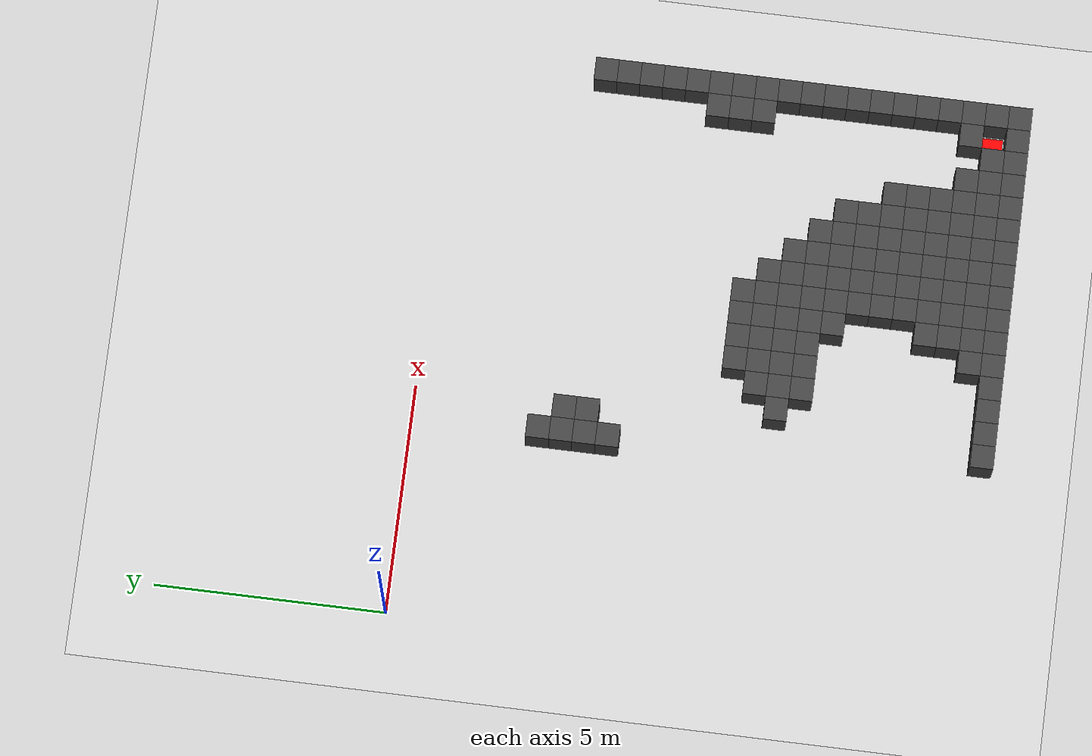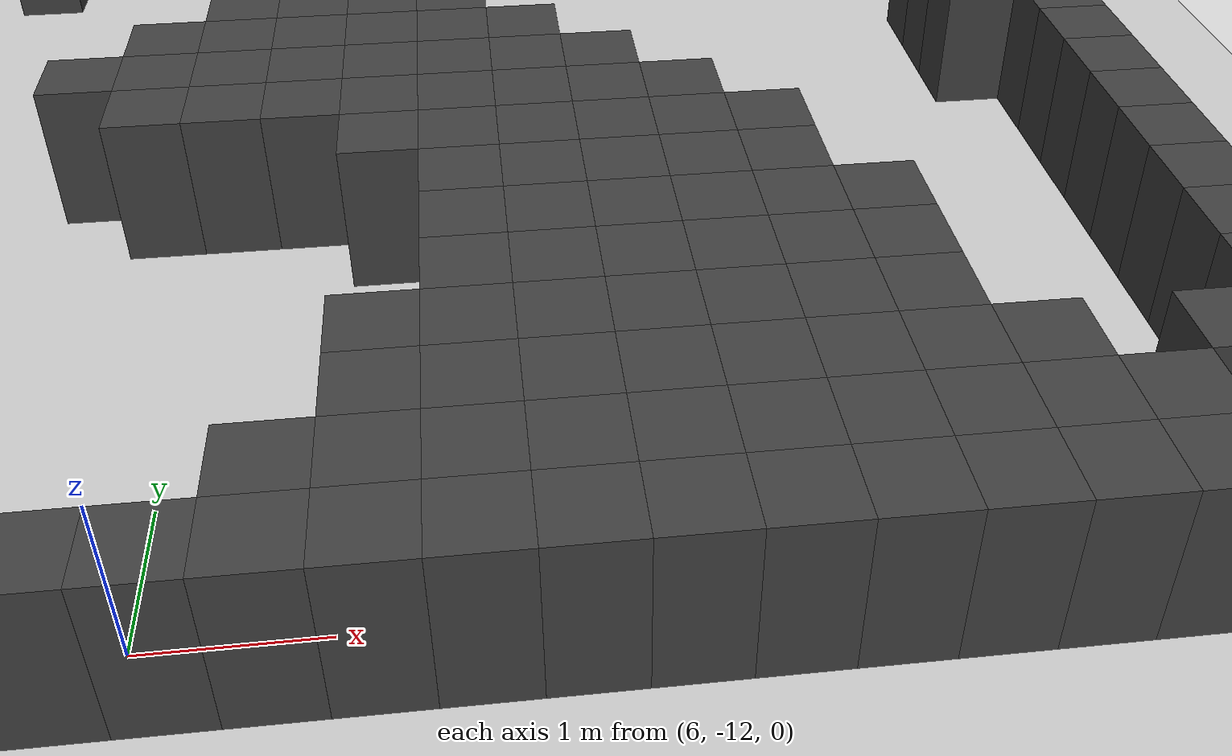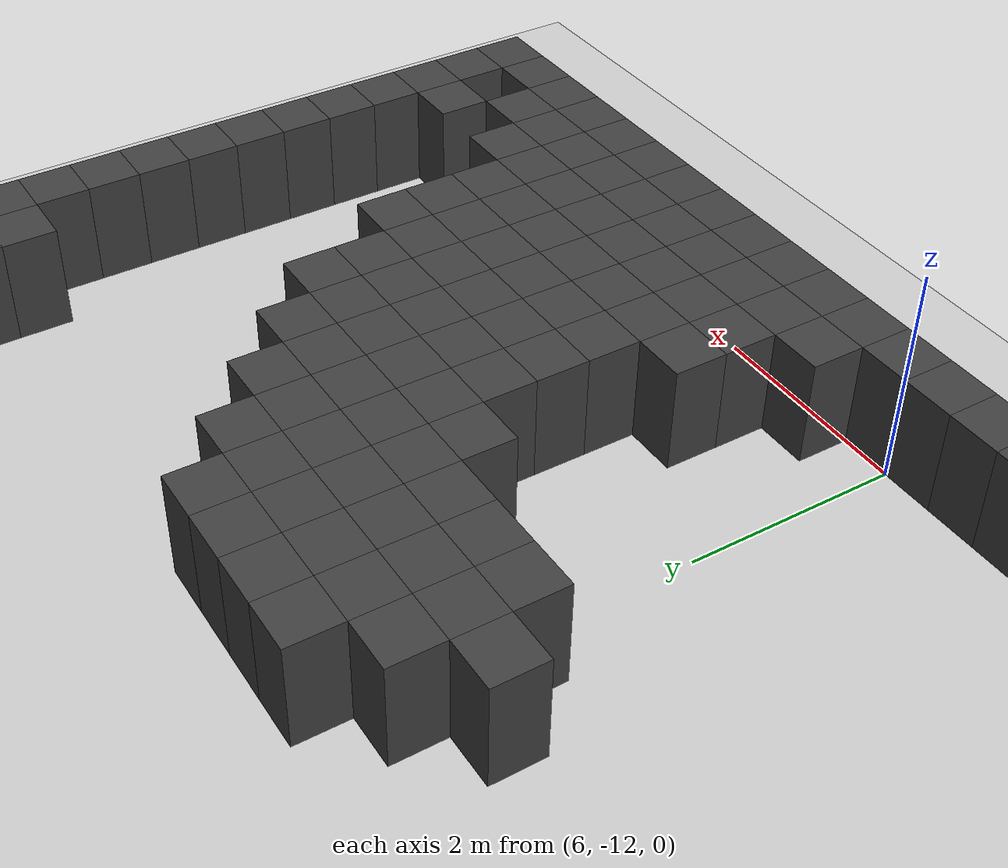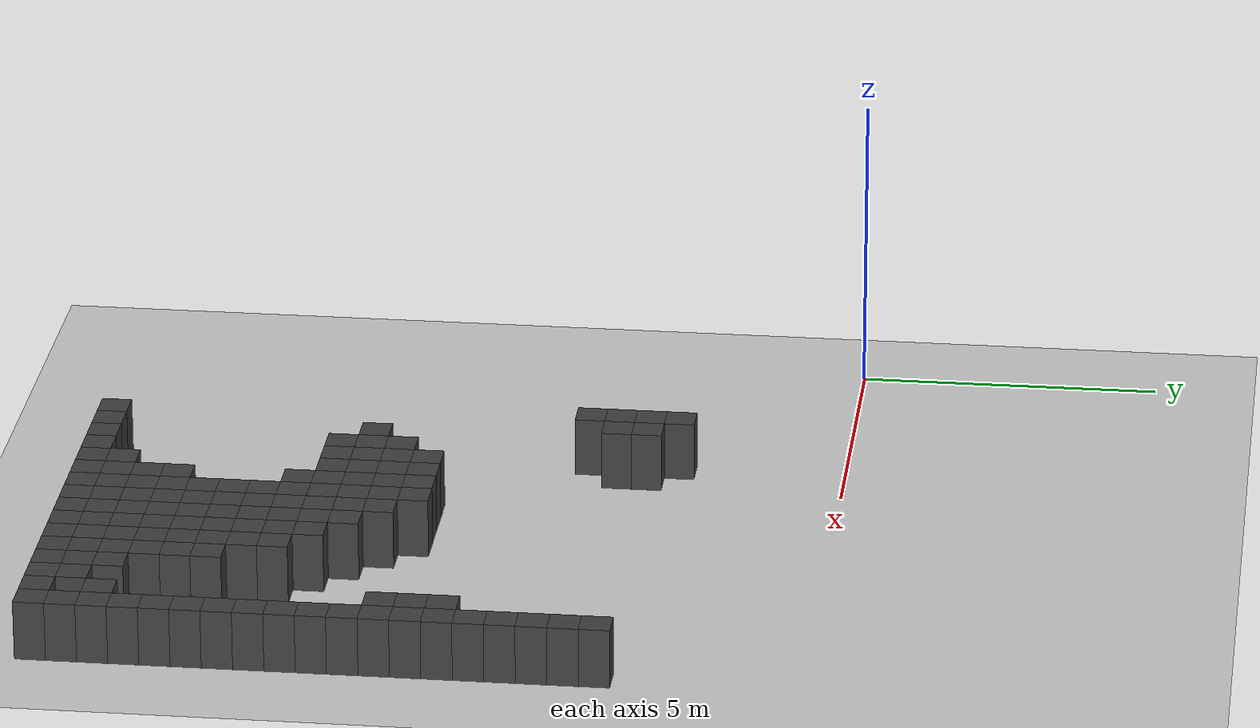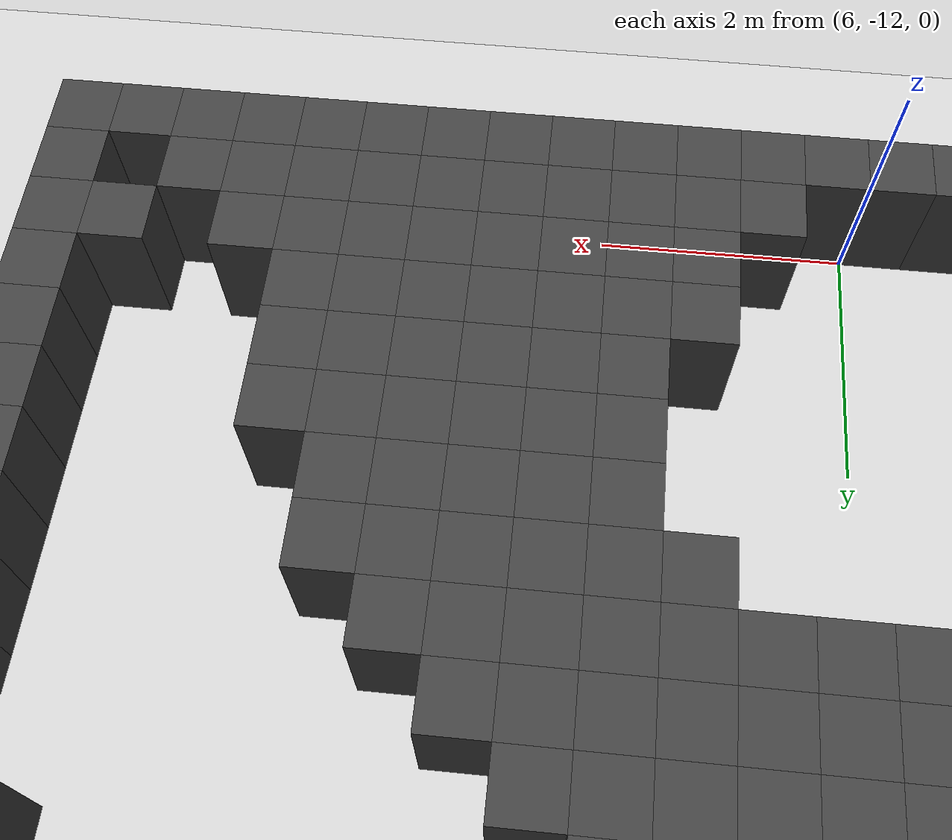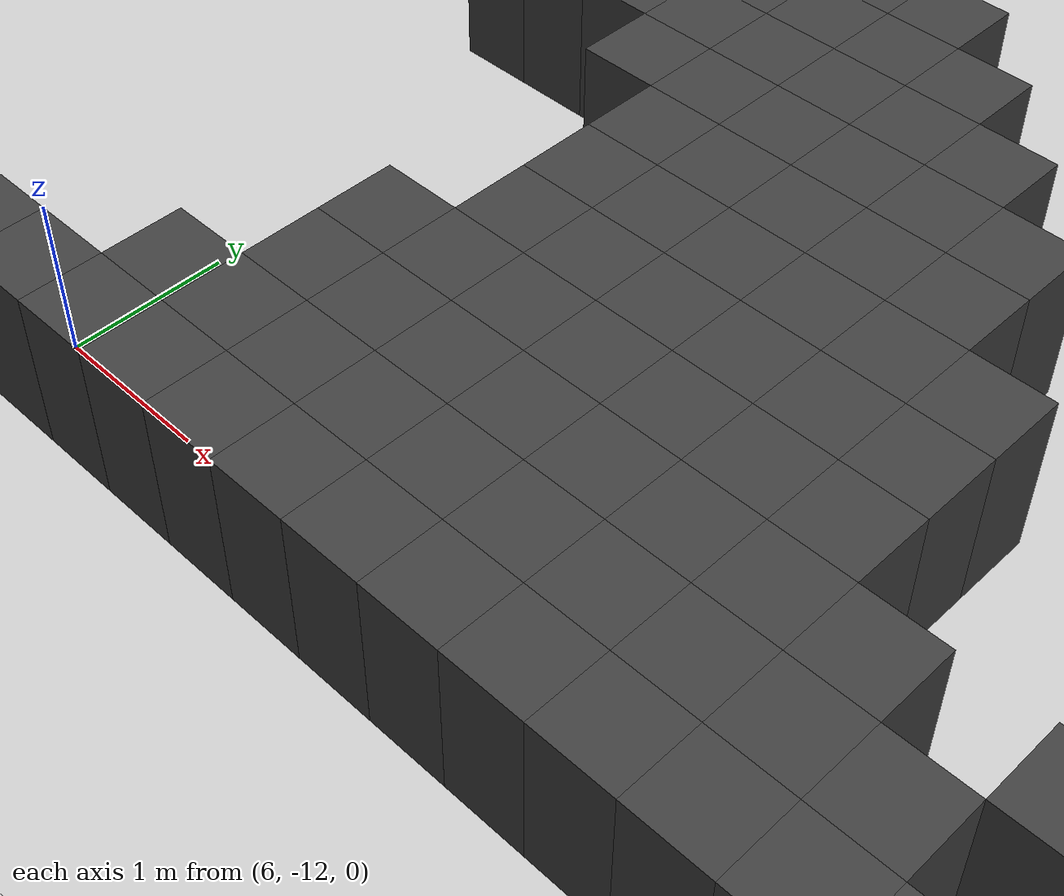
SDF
<sdf version="1.7">
 <world name="map_9705">
  <model name="ground_plane">
   <static>true</static>
   <link name="link">
    <collision name="collision">
     <geometry><plane><normal>0 0 1</normal><size>200 200</size></plane></geometry>
    </collision>
    <visual name="visual">
     <geometry><plane><normal>0 0 1</normal><size>200 200</size></plane></geometry>
     <material><ambient>0.8 0.8 0.8 1</ambient><diffuse>0.8 0.8 0.8 1</diffuse></material>
    </visual>
   </link>
  </model>
  <model name="maze_environment">
   <static>true</static>
   <link name="wall_688">
    <pose>4.250 -2.750 0.500 0 0 0</pose>
    <collision name="col"><geometry><box><size>0.5 0.5 1.0</size></box></geometry></collision>
    <visual name="vis">
     <geometry><box><size>0.5 0.5 1.0</size></box></geometry>
     <material><ambient>0.15 0.15 0.15 1</ambient><diffuse>0.25 0.25 0.25 1</diffuse></material>
    </visual>
   </link>
   <link name="wall_706">
    <pose>4.250 -3.250 0.500 0 0 0</pose>
    <collision name="col"><geometry><box><size>0.5 0.5 1.0</size></box></geometry></collision>
    <visual name="vis">
     <geometry><box><size>0.5 0.5 1.0</size></box></geometry>
     <material><ambient>0.15 0.15 0.15 1</ambient><diffuse>0.25 0.25 0.25 1</diffuse></material>
    </visual>
   </link>
   <link name="wall_707">
    <pose>4.750 -3.250 0.500 0 0 0</pose>
    <collision name="col"><geometry><box><size>0.5 0.5 1.0</size></box></geometry></collision>
    <visual name="vis">
     <geometry><box><size>0.5 0.5 1.0</size></box></geometry>
     <material><ambient>0.15 0.15 0.15 1</ambient><diffuse>0.25 0.25 0.25 1</diffuse></material>
    </visual>
   </link>
   <link name="wall_708">
    <pose>12.250 -3.250 0.500 0 0 0</pose>
    <collision name="col"><geometry><box><size>0.5 0.5 1.0</size></box></geometry></collision>
    <visual name="vis">
     <geometry><box><size>0.5 0.5 1.0</size></box></geometry>
     <material><ambient>0.15 0.15 0.15 1</ambient><diffuse>0.25 0.25 0.25 1</diffuse></material>
    </visual>
   </link>
   <link name="wall_717">
    <pose>4.250 -3.750 0.500 0 0 0</pose>
    <collision name="col"><geometry><box><size>0.5 0.5 1.0</size></box></geometry></collision>
    <visual name="vis">
     <geometry><box><size>0.5 0.5 1.0</size></box></geometry>
     <material><ambient>0.15 0.15 0.15 1</ambient><diffuse>0.25 0.25 0.25 1</diffuse></material>
    </visual>
   </link>
   <link name="wall_718">
    <pose>4.750 -3.750 0.500 0 0 0</pose>
    <collision name="col"><geometry><box><size>0.5 0.5 1.0</size></box></geometry></collision>
    <visual name="vis">
     <geometry><box><size>0.5 0.5 1.0</size></box></geometry>
     <material><ambient>0.15 0.15 0.15 1</ambient><diffuse>0.25 0.25 0.25 1</diffuse></material>
    </visual>
   </link>
   <link name="wall_719">
    <pose>12.250 -3.750 0.500 0 0 0</pose>
    <collision name="col"><geometry><box><size>0.5 0.5 1.0</size></box></geometry></collision>
    <visual name="vis">
     <geometry><box><size>0.5 0.5 1.0</size></box></geometry>
     <material><ambient>0.15 0.15 0.15 1</ambient><diffuse>0.25 0.25 0.25 1</diffuse></material>
    </visual>
   </link>
   <link name="wall_726">
    <pose>4.250 -4.250 0.500 0 0 0</pose>
    <collision name="col"><geometry><box><size>0.5 0.5 1.0</size></box></geometry></collision>
    <visual name="vis">
     <geometry><box><size>0.5 0.5 1.0</size></box></geometry>
     <material><ambient>0.15 0.15 0.15 1</ambient><diffuse>0.25 0.25 0.25 1</diffuse></material>
    </visual>
   </link>
   <link name="wall_727">
    <pose>12.250 -4.250 0.500 0 0 0</pose>
    <collision name="col"><geometry><box><size>0.5 0.5 1.0</size></box></geometry></collision>
    <visual name="vis">
     <geometry><box><size>0.5 0.5 1.0</size></box></geometry>
     <material><ambient>0.15 0.15 0.15 1</ambient><diffuse>0.25 0.25 0.25 1</diffuse></material>
    </visual>
   </link>
   <link name="wall_734">
    <pose>12.250 -4.750 0.500 0 0 0</pose>
    <collision name="col"><geometry><box><size>0.5 0.5 1.0</size></box></geometry></collision>
    <visual name="vis">
     <geometry><box><size>0.5 0.5 1.0</size></box></geometry>
     <material><ambient>0.15 0.15 0.15 1</ambient><diffuse>0.25 0.25 0.25 1</diffuse></material>
    </visual>
   </link>
   <link name="wall_746">
    <pose>12.250 -5.250 0.500 0 0 0</pose>
    <collision name="col"><geometry><box><size>0.5 0.5 1.0</size></box></geometry></collision>
    <visual name="vis">
     <geometry><box><size>0.5 0.5 1.0</size></box></geometry>
     <material><ambient>0.15 0.15 0.15 1</ambient><diffuse>0.25 0.25 0.25 1</diffuse></material>
    </visual>
   </link>
   <link name="wall_763">
    <pose>11.750 -5.750 0.500 0 0 0</pose>
    <collision name="col"><geometry><box><size>0.5 0.5 1.0</size></box></geometry></collision>
    <visual name="vis">
     <geometry><box><size>0.5 0.5 1.0</size></box></geometry>
     <material><ambient>0.15 0.15 0.15 1</ambient><diffuse>0.25 0.25 0.25 1</diffuse></material>
    </visual>
   </link>
   <link name="wall_764">
    <pose>12.250 -5.750 0.500 0 0 0</pose>
    <collision name="col"><geometry><box><size>0.5 0.5 1.0</size></box></geometry></collision>
    <visual name="vis">
     <geometry><box><size>0.5 0.5 1.0</size></box></geometry>
     <material><ambient>0.15 0.15 0.15 1</ambient><diffuse>0.25 0.25 0.25 1</diffuse></material>
    </visual>
   </link>
   <link name="wall_782">
    <pose>11.750 -6.250 0.500 0 0 0</pose>
    <collision name="col"><geometry><box><size>0.5 0.5 1.0</size></box></geometry></collision>
    <visual name="vis">
     <geometry><box><size>0.5 0.5 1.0</size></box></geometry>
     <material><ambient>0.15 0.15 0.15 1</ambient><diffuse>0.25 0.25 0.25 1</diffuse></material>
    </visual>
   </link>
   <link name="wall_783">
    <pose>12.250 -6.250 0.500 0 0 0</pose>
    <collision name="col"><geometry><box><size>0.5 0.5 1.0</size></box></geometry></collision>
    <visual name="vis">
     <geometry><box><size>0.5 0.5 1.0</size></box></geometry>
     <material><ambient>0.15 0.15 0.15 1</ambient><diffuse>0.25 0.25 0.25 1</diffuse></material>
    </visual>
   </link>
   <link name="wall_802">
    <pose>6.250 -6.750 0.500 0 0 0</pose>
    <collision name="col"><geometry><box><size>0.5 0.5 1.0</size></box></geometry></collision>
    <visual name="vis">
     <geometry><box><size>0.5 0.5 1.0</size></box></geometry>
     <material><ambient>0.15 0.15 0.15 1</ambient><diffuse>0.25 0.25 0.25 1</diffuse></material>
    </visual>
   </link>
   <link name="wall_803">
    <pose>6.750 -6.750 0.500 0 0 0</pose>
    <collision name="col"><geometry><box><size>0.5 0.5 1.0</size></box></geometry></collision>
    <visual name="vis">
     <geometry><box><size>0.5 0.5 1.0</size></box></geometry>
     <material><ambient>0.15 0.15 0.15 1</ambient><diffuse>0.25 0.25 0.25 1</diffuse></material>
    </visual>
   </link>
   <link name="wall_804">
    <pose>7.250 -6.750 0.500 0 0 0</pose>
    <collision name="col"><geometry><box><size>0.5 0.5 1.0</size></box></geometry></collision>
    <visual name="vis">
     <geometry><box><size>0.5 0.5 1.0</size></box></geometry>
     <material><ambient>0.15 0.15 0.15 1</ambient><diffuse>0.25 0.25 0.25 1</diffuse></material>
    </visual>
   </link>
   <link name="wall_805">
    <pose>7.750 -6.750 0.500 0 0 0</pose>
    <collision name="col"><geometry><box><size>0.5 0.5 1.0</size></box></geometry></collision>
    <visual name="vis">
     <geometry><box><size>0.5 0.5 1.0</size></box></geometry>
     <material><ambient>0.15 0.15 0.15 1</ambient><diffuse>0.25 0.25 0.25 1</diffuse></material>
    </visual>
   </link>
   <link name="wall_806">
    <pose>11.750 -6.750 0.500 0 0 0</pose>
    <collision name="col"><geometry><box><size>0.5 0.5 1.0</size></box></geometry></collision>
    <visual name="vis">
     <geometry><box><size>0.5 0.5 1.0</size></box></geometry>
     <material><ambient>0.15 0.15 0.15 1</ambient><diffuse>0.25 0.25 0.25 1</diffuse></material>
    </visual>
   </link>
   <link name="wall_807">
    <pose>12.250 -6.750 0.500 0 0 0</pose>
    <collision name="col"><geometry><box><size>0.5 0.5 1.0</size></box></geometry></collision>
    <visual name="vis">
     <geometry><box><size>0.5 0.5 1.0</size></box></geometry>
     <material><ambient>0.15 0.15 0.15 1</ambient><diffuse>0.25 0.25 0.25 1</diffuse></material>
    </visual>
   </link>
   <link name="wall_828">
    <pose>5.750 -7.250 0.500 0 0 0</pose>
    <collision name="col"><geometry><box><size>0.5 0.5 1.0</size></box></geometry></collision>
    <visual name="vis">
     <geometry><box><size>0.5 0.5 1.0</size></box></geometry>
     <material><ambient>0.15 0.15 0.15 1</ambient><diffuse>0.25 0.25 0.25 1</diffuse></material>
    </visual>
   </link>
   <link name="wall_829">
    <pose>6.250 -7.250 0.500 0 0 0</pose>
    <collision name="col"><geometry><box><size>0.5 0.5 1.0</size></box></geometry></collision>
    <visual name="vis">
     <geometry><box><size>0.5 0.5 1.0</size></box></geometry>
     <material><ambient>0.15 0.15 0.15 1</ambient><diffuse>0.25 0.25 0.25 1</diffuse></material>
    </visual>
   </link>
   <link name="wall_830">
    <pose>6.750 -7.250 0.500 0 0 0</pose>
    <collision name="col"><geometry><box><size>0.5 0.5 1.0</size></box></geometry></collision>
    <visual name="vis">
     <geometry><box><size>0.5 0.5 1.0</size></box></geometry>
     <material><ambient>0.15 0.15 0.15 1</ambient><diffuse>0.25 0.25 0.25 1</diffuse></material>
    </visual>
   </link>
   <link name="wall_831">
    <pose>7.250 -7.250 0.500 0 0 0</pose>
    <collision name="col"><geometry><box><size>0.5 0.5 1.0</size></box></geometry></collision>
    <visual name="vis">
     <geometry><box><size>0.5 0.5 1.0</size></box></geometry>
     <material><ambient>0.15 0.15 0.15 1</ambient><diffuse>0.25 0.25 0.25 1</diffuse></material>
    </visual>
   </link>
   <link name="wall_832">
    <pose>7.750 -7.250 0.500 0 0 0</pose>
    <collision name="col"><geometry><box><size>0.5 0.5 1.0</size></box></geometry></collision>
    <visual name="vis">
     <geometry><box><size>0.5 0.5 1.0</size></box></geometry>
     <material><ambient>0.15 0.15 0.15 1</ambient><diffuse>0.25 0.25 0.25 1</diffuse></material>
    </visual>
   </link>
   <link name="wall_833">
    <pose>8.250 -7.250 0.500 0 0 0</pose>
    <collision name="col"><geometry><box><size>0.5 0.5 1.0</size></box></geometry></collision>
    <visual name="vis">
     <geometry><box><size>0.5 0.5 1.0</size></box></geometry>
     <material><ambient>0.15 0.15 0.15 1</ambient><diffuse>0.25 0.25 0.25 1</diffuse></material>
    </visual>
   </link>
   <link name="wall_834">
    <pose>12.250 -7.250 0.500 0 0 0</pose>
    <collision name="col"><geometry><box><size>0.5 0.5 1.0</size></box></geometry></collision>
    <visual name="vis">
     <geometry><box><size>0.5 0.5 1.0</size></box></geometry>
     <material><ambient>0.15 0.15 0.15 1</ambient><diffuse>0.25 0.25 0.25 1</diffuse></material>
    </visual>
   </link>
   <link name="wall_852">
    <pose>5.250 -7.750 0.500 0 0 0</pose>
    <collision name="col"><geometry><box><size>0.5 0.5 1.0</size></box></geometry></collision>
    <visual name="vis">
     <geometry><box><size>0.5 0.5 1.0</size></box></geometry>
     <material><ambient>0.15 0.15 0.15 1</ambient><diffuse>0.25 0.25 0.25 1</diffuse></material>
    </visual>
   </link>
   <link name="wall_853">
    <pose>5.750 -7.750 0.500 0 0 0</pose>
    <collision name="col"><geometry><box><size>0.5 0.5 1.0</size></box></geometry></collision>
    <visual name="vis">
     <geometry><box><size>0.5 0.5 1.0</size></box></geometry>
     <material><ambient>0.15 0.15 0.15 1</ambient><diffuse>0.25 0.25 0.25 1</diffuse></material>
    </visual>
   </link>
   <link name="wall_854">
    <pose>6.250 -7.750 0.500 0 0 0</pose>
    <collision name="col"><geometry><box><size>0.5 0.5 1.0</size></box></geometry></collision>
    <visual name="vis">
     <geometry><box><size>0.5 0.5 1.0</size></box></geometry>
     <material><ambient>0.15 0.15 0.15 1</ambient><diffuse>0.25 0.25 0.25 1</diffuse></material>
    </visual>
   </link>
   <link name="wall_855">
    <pose>6.750 -7.750 0.500 0 0 0</pose>
    <collision name="col"><geometry><box><size>0.5 0.5 1.0</size></box></geometry></collision>
    <visual name="vis">
     <geometry><box><size>0.5 0.5 1.0</size></box></geometry>
     <material><ambient>0.15 0.15 0.15 1</ambient><diffuse>0.25 0.25 0.25 1</diffuse></material>
    </visual>
   </link>
   <link name="wall_856">
    <pose>7.250 -7.750 0.500 0 0 0</pose>
    <collision name="col"><geometry><box><size>0.5 0.5 1.0</size></box></geometry></collision>
    <visual name="vis">
     <geometry><box><size>0.5 0.5 1.0</size></box></geometry>
     <material><ambient>0.15 0.15 0.15 1</ambient><diffuse>0.25 0.25 0.25 1</diffuse></material>
    </visual>
   </link>
   <link name="wall_857">
    <pose>7.750 -7.750 0.500 0 0 0</pose>
    <collision name="col"><geometry><box><size>0.5 0.5 1.0</size></box></geometry></collision>
    <visual name="vis">
     <geometry><box><size>0.5 0.5 1.0</size></box></geometry>
     <material><ambient>0.15 0.15 0.15 1</ambient><diffuse>0.25 0.25 0.25 1</diffuse></material>
    </visual>
   </link>
   <link name="wall_858">
    <pose>8.250 -7.750 0.500 0 0 0</pose>
    <collision name="col"><geometry><box><size>0.5 0.5 1.0</size></box></geometry></collision>
    <visual name="vis">
     <geometry><box><size>0.5 0.5 1.0</size></box></geometry>
     <material><ambient>0.15 0.15 0.15 1</ambient><diffuse>0.25 0.25 0.25 1</diffuse></material>
    </visual>
   </link>
   <link name="wall_859">
    <pose>8.750 -7.750 0.500 0 0 0</pose>
    <collision name="col"><geometry><box><size>0.5 0.5 1.0</size></box></geometry></collision>
    <visual name="vis">
     <geometry><box><size>0.5 0.5 1.0</size></box></geometry>
     <material><ambient>0.15 0.15 0.15 1</ambient><diffuse>0.25 0.25 0.25 1</diffuse></material>
    </visual>
   </link>
   <link name="wall_860">
    <pose>12.250 -7.750 0.500 0 0 0</pose>
    <collision name="col"><geometry><box><size>0.5 0.5 1.0</size></box></geometry></collision>
    <visual name="vis">
     <geometry><box><size>0.5 0.5 1.0</size></box></geometry>
     <material><ambient>0.15 0.15 0.15 1</ambient><diffuse>0.25 0.25 0.25 1</diffuse></material>
    </visual>
   </link>
   <link name="wall_867">
    <pose>5.750 -8.250 0.500 0 0 0</pose>
    <collision name="col"><geometry><box><size>0.5 0.5 1.0</size></box></geometry></collision>
    <visual name="vis">
     <geometry><box><size>0.5 0.5 1.0</size></box></geometry>
     <material><ambient>0.15 0.15 0.15 1</ambient><diffuse>0.25 0.25 0.25 1</diffuse></material>
    </visual>
   </link>
   <link name="wall_868">
    <pose>6.250 -8.250 0.500 0 0 0</pose>
    <collision name="col"><geometry><box><size>0.5 0.5 1.0</size></box></geometry></collision>
    <visual name="vis">
     <geometry><box><size>0.5 0.5 1.0</size></box></geometry>
     <material><ambient>0.15 0.15 0.15 1</ambient><diffuse>0.25 0.25 0.25 1</diffuse></material>
    </visual>
   </link>
   <link name="wall_869">
    <pose>6.750 -8.250 0.500 0 0 0</pose>
    <collision name="col"><geometry><box><size>0.5 0.5 1.0</size></box></geometry></collision>
    <visual name="vis">
     <geometry><box><size>0.5 0.5 1.0</size></box></geometry>
     <material><ambient>0.15 0.15 0.15 1</ambient><diffuse>0.25 0.25 0.25 1</diffuse></material>
    </visual>
   </link>
   <link name="wall_870">
    <pose>7.250 -8.250 0.500 0 0 0</pose>
    <collision name="col"><geometry><box><size>0.5 0.5 1.0</size></box></geometry></collision>
    <visual name="vis">
     <geometry><box><size>0.5 0.5 1.0</size></box></geometry>
     <material><ambient>0.15 0.15 0.15 1</ambient><diffuse>0.25 0.25 0.25 1</diffuse></material>
    </visual>
   </link>
   <link name="wall_871">
    <pose>7.750 -8.250 0.500 0 0 0</pose>
    <collision name="col"><geometry><box><size>0.5 0.5 1.0</size></box></geometry></collision>
    <visual name="vis">
     <geometry><box><size>0.5 0.5 1.0</size></box></geometry>
     <material><ambient>0.15 0.15 0.15 1</ambient><diffuse>0.25 0.25 0.25 1</diffuse></material>
    </visual>
   </link>
   <link name="wall_872">
    <pose>8.250 -8.250 0.500 0 0 0</pose>
    <collision name="col"><geometry><box><size>0.5 0.5 1.0</size></box></geometry></collision>
    <visual name="vis">
     <geometry><box><size>0.5 0.5 1.0</size></box></geometry>
     <material><ambient>0.15 0.15 0.15 1</ambient><diffuse>0.25 0.25 0.25 1</diffuse></material>
    </visual>
   </link>
   <link name="wall_873">
    <pose>8.750 -8.250 0.500 0 0 0</pose>
    <collision name="col"><geometry><box><size>0.5 0.5 1.0</size></box></geometry></collision>
    <visual name="vis">
     <geometry><box><size>0.5 0.5 1.0</size></box></geometry>
     <material><ambient>0.15 0.15 0.15 1</ambient><diffuse>0.25 0.25 0.25 1</diffuse></material>
    </visual>
   </link>
   <link name="wall_874">
    <pose>9.250 -8.250 0.500 0 0 0</pose>
    <collision name="col"><geometry><box><size>0.5 0.5 1.0</size></box></geometry></collision>
    <visual name="vis">
     <geometry><box><size>0.5 0.5 1.0</size></box></geometry>
     <material><ambient>0.15 0.15 0.15 1</ambient><diffuse>0.25 0.25 0.25 1</diffuse></material>
    </visual>
   </link>
   <link name="wall_875">
    <pose>12.250 -8.250 0.500 0 0 0</pose>
    <collision name="col"><geometry><box><size>0.5 0.5 1.0</size></box></geometry></collision>
    <visual name="vis">
     <geometry><box><size>0.5 0.5 1.0</size></box></geometry>
     <material><ambient>0.15 0.15 0.15 1</ambient><diffuse>0.25 0.25 0.25 1</diffuse></material>
    </visual>
   </link>
   <link name="wall_880">
    <pose>7.250 -8.750 0.500 0 0 0</pose>
    <collision name="col"><geometry><box><size>0.5 0.5 1.0</size></box></geometry></collision>
    <visual name="vis">
     <geometry><box><size>0.5 0.5 1.0</size></box></geometry>
     <material><ambient>0.15 0.15 0.15 1</ambient><diffuse>0.25 0.25 0.25 1</diffuse></material>
    </visual>
   </link>
   <link name="wall_881">
    <pose>7.750 -8.750 0.500 0 0 0</pose>
    <collision name="col"><geometry><box><size>0.5 0.5 1.0</size></box></geometry></collision>
    <visual name="vis">
     <geometry><box><size>0.5 0.5 1.0</size></box></geometry>
     <material><ambient>0.15 0.15 0.15 1</ambient><diffuse>0.25 0.25 0.25 1</diffuse></material>
    </visual>
   </link>
   <link name="wall_882">
    <pose>8.250 -8.750 0.500 0 0 0</pose>
    <collision name="col"><geometry><box><size>0.5 0.5 1.0</size></box></geometry></collision>
    <visual name="vis">
     <geometry><box><size>0.5 0.5 1.0</size></box></geometry>
     <material><ambient>0.15 0.15 0.15 1</ambient><diffuse>0.25 0.25 0.25 1</diffuse></material>
    </visual>
   </link>
   <link name="wall_883">
    <pose>8.750 -8.750 0.500 0 0 0</pose>
    <collision name="col"><geometry><box><size>0.5 0.5 1.0</size></box></geometry></collision>
    <visual name="vis">
     <geometry><box><size>0.5 0.5 1.0</size></box></geometry>
     <material><ambient>0.15 0.15 0.15 1</ambient><diffuse>0.25 0.25 0.25 1</diffuse></material>
    </visual>
   </link>
   <link name="wall_884">
    <pose>9.250 -8.750 0.500 0 0 0</pose>
    <collision name="col"><geometry><box><size>0.5 0.5 1.0</size></box></geometry></collision>
    <visual name="vis">
     <geometry><box><size>0.5 0.5 1.0</size></box></geometry>
     <material><ambient>0.15 0.15 0.15 1</ambient><diffuse>0.25 0.25 0.25 1</diffuse></material>
    </visual>
   </link>
   <link name="wall_885">
    <pose>9.750 -8.750 0.500 0 0 0</pose>
    <collision name="col"><geometry><box><size>0.5 0.5 1.0</size></box></geometry></collision>
    <visual name="vis">
     <geometry><box><size>0.5 0.5 1.0</size></box></geometry>
     <material><ambient>0.15 0.15 0.15 1</ambient><diffuse>0.25 0.25 0.25 1</diffuse></material>
    </visual>
   </link>
   <link name="wall_886">
    <pose>12.250 -8.750 0.500 0 0 0</pose>
    <collision name="col"><geometry><box><size>0.5 0.5 1.0</size></box></geometry></collision>
    <visual name="vis">
     <geometry><box><size>0.5 0.5 1.0</size></box></geometry>
     <material><ambient>0.15 0.15 0.15 1</ambient><diffuse>0.25 0.25 0.25 1</diffuse></material>
    </visual>
   </link>
   <link name="wall_892">
    <pose>7.750 -9.250 0.500 0 0 0</pose>
    <collision name="col"><geometry><box><size>0.5 0.5 1.0</size></box></geometry></collision>
    <visual name="vis">
     <geometry><box><size>0.5 0.5 1.0</size></box></geometry>
     <material><ambient>0.15 0.15 0.15 1</ambient><diffuse>0.25 0.25 0.25 1</diffuse></material>
    </visual>
   </link>
   <link name="wall_893">
    <pose>8.250 -9.250 0.500 0 0 0</pose>
    <collision name="col"><geometry><box><size>0.5 0.5 1.0</size></box></geometry></collision>
    <visual name="vis">
     <geometry><box><size>0.5 0.5 1.0</size></box></geometry>
     <material><ambient>0.15 0.15 0.15 1</ambient><diffuse>0.25 0.25 0.25 1</diffuse></material>
    </visual>
   </link>
   <link name="wall_894">
    <pose>8.750 -9.250 0.500 0 0 0</pose>
    <collision name="col"><geometry><box><size>0.5 0.5 1.0</size></box></geometry></collision>
    <visual name="vis">
     <geometry><box><size>0.5 0.5 1.0</size></box></geometry>
     <material><ambient>0.15 0.15 0.15 1</ambient><diffuse>0.25 0.25 0.25 1</diffuse></material>
    </visual>
   </link>
   <link name="wall_895">
    <pose>9.250 -9.250 0.500 0 0 0</pose>
    <collision name="col"><geometry><box><size>0.5 0.5 1.0</size></box></geometry></collision>
    <visual name="vis">
     <geometry><box><size>0.5 0.5 1.0</size></box></geometry>
     <material><ambient>0.15 0.15 0.15 1</ambient><diffuse>0.25 0.25 0.25 1</diffuse></material>
    </visual>
   </link>
   <link name="wall_896">
    <pose>9.750 -9.250 0.500 0 0 0</pose>
    <collision name="col"><geometry><box><size>0.5 0.5 1.0</size></box></geometry></collision>
    <visual name="vis">
     <geometry><box><size>0.5 0.5 1.0</size></box></geometry>
     <material><ambient>0.15 0.15 0.15 1</ambient><diffuse>0.25 0.25 0.25 1</diffuse></material>
    </visual>
   </link>
   <link name="wall_897">
    <pose>12.250 -9.250 0.500 0 0 0</pose>
    <collision name="col"><geometry><box><size>0.5 0.5 1.0</size></box></geometry></collision>
    <visual name="vis">
     <geometry><box><size>0.5 0.5 1.0</size></box></geometry>
     <material><ambient>0.15 0.15 0.15 1</ambient><diffuse>0.25 0.25 0.25 1</diffuse></material>
    </visual>
   </link>
   <link name="wall_906">
    <pose>7.750 -9.750 0.500 0 0 0</pose>
    <collision name="col"><geometry><box><size>0.5 0.5 1.0</size></box></geometry></collision>
    <visual name="vis">
     <geometry><box><size>0.5 0.5 1.0</size></box></geometry>
     <material><ambient>0.15 0.15 0.15 1</ambient><diffuse>0.25 0.25 0.25 1</diffuse></material>
    </visual>
   </link>
   <link name="wall_907">
    <pose>8.250 -9.750 0.500 0 0 0</pose>
    <collision name="col"><geometry><box><size>0.5 0.5 1.0</size></box></geometry></collision>
    <visual name="vis">
     <geometry><box><size>0.5 0.5 1.0</size></box></geometry>
     <material><ambient>0.15 0.15 0.15 1</ambient><diffuse>0.25 0.25 0.25 1</diffuse></material>
    </visual>
   </link>
   <link name="wall_908">
    <pose>8.750 -9.750 0.500 0 0 0</pose>
    <collision name="col"><geometry><box><size>0.5 0.5 1.0</size></box></geometry></collision>
    <visual name="vis">
     <geometry><box><size>0.5 0.5 1.0</size></box></geometry>
     <material><ambient>0.15 0.15 0.15 1</ambient><diffuse>0.25 0.25 0.25 1</diffuse></material>
    </visual>
   </link>
   <link name="wall_909">
    <pose>9.250 -9.750 0.500 0 0 0</pose>
    <collision name="col"><geometry><box><size>0.5 0.5 1.0</size></box></geometry></collision>
    <visual name="vis">
     <geometry><box><size>0.5 0.5 1.0</size></box></geometry>
     <material><ambient>0.15 0.15 0.15 1</ambient><diffuse>0.25 0.25 0.25 1</diffuse></material>
    </visual>
   </link>
   <link name="wall_910">
    <pose>9.750 -9.750 0.500 0 0 0</pose>
    <collision name="col"><geometry><box><size>0.5 0.5 1.0</size></box></geometry></collision>
    <visual name="vis">
     <geometry><box><size>0.5 0.5 1.0</size></box></geometry>
     <material><ambient>0.15 0.15 0.15 1</ambient><diffuse>0.25 0.25 0.25 1</diffuse></material>
    </visual>
   </link>
   <link name="wall_911">
    <pose>10.250 -9.750 0.500 0 0 0</pose>
    <collision name="col"><geometry><box><size>0.5 0.5 1.0</size></box></geometry></collision>
    <visual name="vis">
     <geometry><box><size>0.5 0.5 1.0</size></box></geometry>
     <material><ambient>0.15 0.15 0.15 1</ambient><diffuse>0.25 0.25 0.25 1</diffuse></material>
    </visual>
   </link>
   <link name="wall_912">
    <pose>12.250 -9.750 0.500 0 0 0</pose>
    <collision name="col"><geometry><box><size>0.5 0.5 1.0</size></box></geometry></collision>
    <visual name="vis">
     <geometry><box><size>0.5 0.5 1.0</size></box></geometry>
     <material><ambient>0.15 0.15 0.15 1</ambient><diffuse>0.25 0.25 0.25 1</diffuse></material>
    </visual>
   </link>
   <link name="wall_924">
    <pose>7.750 -10.250 0.500 0 0 0</pose>
    <collision name="col"><geometry><box><size>0.5 0.5 1.0</size></box></geometry></collision>
    <visual name="vis">
     <geometry><box><size>0.5 0.5 1.0</size></box></geometry>
     <material><ambient>0.15 0.15 0.15 1</ambient><diffuse>0.25 0.25 0.25 1</diffuse></material>
    </visual>
   </link>
   <link name="wall_925">
    <pose>8.250 -10.250 0.500 0 0 0</pose>
    <collision name="col"><geometry><box><size>0.5 0.5 1.0</size></box></geometry></collision>
    <visual name="vis">
     <geometry><box><size>0.5 0.5 1.0</size></box></geometry>
     <material><ambient>0.15 0.15 0.15 1</ambient><diffuse>0.25 0.25 0.25 1</diffuse></material>
    </visual>
   </link>
   <link name="wall_926">
    <pose>8.750 -10.250 0.500 0 0 0</pose>
    <collision name="col"><geometry><box><size>0.5 0.5 1.0</size></box></geometry></collision>
    <visual name="vis">
     <geometry><box><size>0.5 0.5 1.0</size></box></geometry>
     <material><ambient>0.15 0.15 0.15 1</ambient><diffuse>0.25 0.25 0.25 1</diffuse></material>
    </visual>
   </link>
   <link name="wall_927">
    <pose>9.250 -10.250 0.500 0 0 0</pose>
    <collision name="col"><geometry><box><size>0.5 0.5 1.0</size></box></geometry></collision>
    <visual name="vis">
     <geometry><box><size>0.5 0.5 1.0</size></box></geometry>
     <material><ambient>0.15 0.15 0.15 1</ambient><diffuse>0.25 0.25 0.25 1</diffuse></material>
    </visual>
   </link>
   <link name="wall_928">
    <pose>9.750 -10.250 0.500 0 0 0</pose>
    <collision name="col"><geometry><box><size>0.5 0.5 1.0</size></box></geometry></collision>
    <visual name="vis">
     <geometry><box><size>0.5 0.5 1.0</size></box></geometry>
     <material><ambient>0.15 0.15 0.15 1</ambient><diffuse>0.25 0.25 0.25 1</diffuse></material>
    </visual>
   </link>
   <link name="wall_929">
    <pose>10.250 -10.250 0.500 0 0 0</pose>
    <collision name="col"><geometry><box><size>0.5 0.5 1.0</size></box></geometry></collision>
    <visual name="vis">
     <geometry><box><size>0.5 0.5 1.0</size></box></geometry>
     <material><ambient>0.15 0.15 0.15 1</ambient><diffuse>0.25 0.25 0.25 1</diffuse></material>
    </visual>
   </link>
   <link name="wall_930">
    <pose>12.250 -10.250 0.500 0 0 0</pose>
    <collision name="col"><geometry><box><size>0.5 0.5 1.0</size></box></geometry></collision>
    <visual name="vis">
     <geometry><box><size>0.5 0.5 1.0</size></box></geometry>
     <material><ambient>0.15 0.15 0.15 1</ambient><diffuse>0.25 0.25 0.25 1</diffuse></material>
    </visual>
   </link>
   <link name="wall_944">
    <pose>7.250 -10.750 0.500 0 0 0</pose>
    <collision name="col"><geometry><box><size>0.5 0.5 1.0</size></box></geometry></collision>
    <visual name="vis">
     <geometry><box><size>0.5 0.5 1.0</size></box></geometry>
     <material><ambient>0.15 0.15 0.15 1</ambient><diffuse>0.25 0.25 0.25 1</diffuse></material>
    </visual>
   </link>
   <link name="wall_945">
    <pose>7.750 -10.750 0.500 0 0 0</pose>
    <collision name="col"><geometry><box><size>0.5 0.5 1.0</size></box></geometry></collision>
    <visual name="vis">
     <geometry><box><size>0.5 0.5 1.0</size></box></geometry>
     <material><ambient>0.15 0.15 0.15 1</ambient><diffuse>0.25 0.25 0.25 1</diffuse></material>
    </visual>
   </link>
   <link name="wall_946">
    <pose>8.250 -10.750 0.500 0 0 0</pose>
    <collision name="col"><geometry><box><size>0.5 0.5 1.0</size></box></geometry></collision>
    <visual name="vis">
     <geometry><box><size>0.5 0.5 1.0</size></box></geometry>
     <material><ambient>0.15 0.15 0.15 1</ambient><diffuse>0.25 0.25 0.25 1</diffuse></material>
    </visual>
   </link>
   <link name="wall_947">
    <pose>8.750 -10.750 0.500 0 0 0</pose>
    <collision name="col"><geometry><box><size>0.5 0.5 1.0</size></box></geometry></collision>
    <visual name="vis">
     <geometry><box><size>0.5 0.5 1.0</size></box></geometry>
     <material><ambient>0.15 0.15 0.15 1</ambient><diffuse>0.25 0.25 0.25 1</diffuse></material>
    </visual>
   </link>
   <link name="wall_948">
    <pose>9.250 -10.750 0.500 0 0 0</pose>
    <collision name="col"><geometry><box><size>0.5 0.5 1.0</size></box></geometry></collision>
    <visual name="vis">
     <geometry><box><size>0.5 0.5 1.0</size></box></geometry>
     <material><ambient>0.15 0.15 0.15 1</ambient><diffuse>0.25 0.25 0.25 1</diffuse></material>
    </visual>
   </link>
   <link name="wall_949">
    <pose>9.750 -10.750 0.500 0 0 0</pose>
    <collision name="col"><geometry><box><size>0.5 0.5 1.0</size></box></geometry></collision>
    <visual name="vis">
     <geometry><box><size>0.5 0.5 1.0</size></box></geometry>
     <material><ambient>0.15 0.15 0.15 1</ambient><diffuse>0.25 0.25 0.25 1</diffuse></material>
    </visual>
   </link>
   <link name="wall_950">
    <pose>10.250 -10.750 0.500 0 0 0</pose>
    <collision name="col"><geometry><box><size>0.5 0.5 1.0</size></box></geometry></collision>
    <visual name="vis">
     <geometry><box><size>0.5 0.5 1.0</size></box></geometry>
     <material><ambient>0.15 0.15 0.15 1</ambient><diffuse>0.25 0.25 0.25 1</diffuse></material>
    </visual>
   </link>
   <link name="wall_951">
    <pose>12.250 -10.750 0.500 0 0 0</pose>
    <collision name="col"><geometry><box><size>0.5 0.5 1.0</size></box></geometry></collision>
    <visual name="vis">
     <geometry><box><size>0.5 0.5 1.0</size></box></geometry>
     <material><ambient>0.15 0.15 0.15 1</ambient><diffuse>0.25 0.25 0.25 1</diffuse></material>
    </visual>
   </link>
   <link name="wall_971">
    <pose>7.250 -11.250 0.500 0 0 0</pose>
    <collision name="col"><geometry><box><size>0.5 0.5 1.0</size></box></geometry></collision>
    <visual name="vis">
     <geometry><box><size>0.5 0.5 1.0</size></box></geometry>
     <material><ambient>0.15 0.15 0.15 1</ambient><diffuse>0.25 0.25 0.25 1</diffuse></material>
    </visual>
   </link>
   <link name="wall_972">
    <pose>7.750 -11.250 0.500 0 0 0</pose>
    <collision name="col"><geometry><box><size>0.5 0.5 1.0</size></box></geometry></collision>
    <visual name="vis">
     <geometry><box><size>0.5 0.5 1.0</size></box></geometry>
     <material><ambient>0.15 0.15 0.15 1</ambient><diffuse>0.25 0.25 0.25 1</diffuse></material>
    </visual>
   </link>
   <link name="wall_973">
    <pose>8.250 -11.250 0.500 0 0 0</pose>
    <collision name="col"><geometry><box><size>0.5 0.5 1.0</size></box></geometry></collision>
    <visual name="vis">
     <geometry><box><size>0.5 0.5 1.0</size></box></geometry>
     <material><ambient>0.15 0.15 0.15 1</ambient><diffuse>0.25 0.25 0.25 1</diffuse></material>
    </visual>
   </link>
   <link name="wall_974">
    <pose>8.750 -11.250 0.500 0 0 0</pose>
    <collision name="col"><geometry><box><size>0.5 0.5 1.0</size></box></geometry></collision>
    <visual name="vis">
     <geometry><box><size>0.5 0.5 1.0</size></box></geometry>
     <material><ambient>0.15 0.15 0.15 1</ambient><diffuse>0.25 0.25 0.25 1</diffuse></material>
    </visual>
   </link>
   <link name="wall_975">
    <pose>9.250 -11.250 0.500 0 0 0</pose>
    <collision name="col"><geometry><box><size>0.5 0.5 1.0</size></box></geometry></collision>
    <visual name="vis">
     <geometry><box><size>0.5 0.5 1.0</size></box></geometry>
     <material><ambient>0.15 0.15 0.15 1</ambient><diffuse>0.25 0.25 0.25 1</diffuse></material>
    </visual>
   </link>
   <link name="wall_976">
    <pose>9.750 -11.250 0.500 0 0 0</pose>
    <collision name="col"><geometry><box><size>0.5 0.5 1.0</size></box></geometry></collision>
    <visual name="vis">
     <geometry><box><size>0.5 0.5 1.0</size></box></geometry>
     <material><ambient>0.15 0.15 0.15 1</ambient><diffuse>0.25 0.25 0.25 1</diffuse></material>
    </visual>
   </link>
   <link name="wall_977">
    <pose>10.250 -11.250 0.500 0 0 0</pose>
    <collision name="col"><geometry><box><size>0.5 0.5 1.0</size></box></geometry></collision>
    <visual name="vis">
     <geometry><box><size>0.5 0.5 1.0</size></box></geometry>
     <material><ambient>0.15 0.15 0.15 1</ambient><diffuse>0.25 0.25 0.25 1</diffuse></material>
    </visual>
   </link>
   <link name="wall_978">
    <pose>10.750 -11.250 0.500 0 0 0</pose>
    <collision name="col"><geometry><box><size>0.5 0.5 1.0</size></box></geometry></collision>
    <visual name="vis">
     <geometry><box><size>0.5 0.5 1.0</size></box></geometry>
     <material><ambient>0.15 0.15 0.15 1</ambient><diffuse>0.25 0.25 0.25 1</diffuse></material>
    </visual>
   </link>
   <link name="wall_979">
    <pose>11.750 -11.250 0.500 0 0 0</pose>
    <collision name="col"><geometry><box><size>0.5 0.5 1.0</size></box></geometry></collision>
    <visual name="vis">
     <geometry><box><size>0.5 0.5 1.0</size></box></geometry>
     <material><ambient>0.15 0.15 0.15 1</ambient><diffuse>0.25 0.25 0.25 1</diffuse></material>
    </visual>
   </link>
   <link name="wall_980">
    <pose>12.250 -11.250 0.500 0 0 0</pose>
    <collision name="col"><geometry><box><size>0.5 0.5 1.0</size></box></geometry></collision>
    <visual name="vis">
     <geometry><box><size>0.5 0.5 1.0</size></box></geometry>
     <material><ambient>0.15 0.15 0.15 1</ambient><diffuse>0.25 0.25 0.25 1</diffuse></material>
    </visual>
   </link>
   <link name="wall_1008">
    <pose>6.750 -11.750 0.500 0 0 0</pose>
    <collision name="col"><geometry><box><size>0.5 0.5 1.0</size></box></geometry></collision>
    <visual name="vis">
     <geometry><box><size>0.5 0.5 1.0</size></box></geometry>
     <material><ambient>0.15 0.15 0.15 1</ambient><diffuse>0.25 0.25 0.25 1</diffuse></material>
    </visual>
   </link>
   <link name="wall_1009">
    <pose>7.250 -11.750 0.500 0 0 0</pose>
    <collision name="col"><geometry><box><size>0.5 0.5 1.0</size></box></geometry></collision>
    <visual name="vis">
     <geometry><box><size>0.5 0.5 1.0</size></box></geometry>
     <material><ambient>0.15 0.15 0.15 1</ambient><diffuse>0.25 0.25 0.25 1</diffuse></material>
    </visual>
   </link>
   <link name="wall_1010">
    <pose>7.750 -11.750 0.500 0 0 0</pose>
    <collision name="col"><geometry><box><size>0.5 0.5 1.0</size></box></geometry></collision>
    <visual name="vis">
     <geometry><box><size>0.5 0.5 1.0</size></box></geometry>
     <material><ambient>0.15 0.15 0.15 1</ambient><diffuse>0.25 0.25 0.25 1</diffuse></material>
    </visual>
   </link>
   <link name="wall_1011">
    <pose>8.250 -11.750 0.500 0 0 0</pose>
    <collision name="col"><geometry><box><size>0.5 0.5 1.0</size></box></geometry></collision>
    <visual name="vis">
     <geometry><box><size>0.5 0.5 1.0</size></box></geometry>
     <material><ambient>0.15 0.15 0.15 1</ambient><diffuse>0.25 0.25 0.25 1</diffuse></material>
    </visual>
   </link>
   <link name="wall_1012">
    <pose>8.750 -11.750 0.500 0 0 0</pose>
    <collision name="col"><geometry><box><size>0.5 0.5 1.0</size></box></geometry></collision>
    <visual name="vis">
     <geometry><box><size>0.5 0.5 1.0</size></box></geometry>
     <material><ambient>0.15 0.15 0.15 1</ambient><diffuse>0.25 0.25 0.25 1</diffuse></material>
    </visual>
   </link>
   <link name="wall_1013">
    <pose>9.250 -11.750 0.500 0 0 0</pose>
    <collision name="col"><geometry><box><size>0.5 0.5 1.0</size></box></geometry></collision>
    <visual name="vis">
     <geometry><box><size>0.5 0.5 1.0</size></box></geometry>
     <material><ambient>0.15 0.15 0.15 1</ambient><diffuse>0.25 0.25 0.25 1</diffuse></material>
    </visual>
   </link>
   <link name="wall_1014">
    <pose>9.750 -11.750 0.500 0 0 0</pose>
    <collision name="col"><geometry><box><size>0.5 0.5 1.0</size></box></geometry></collision>
    <visual name="vis">
     <geometry><box><size>0.5 0.5 1.0</size></box></geometry>
     <material><ambient>0.15 0.15 0.15 1</ambient><diffuse>0.25 0.25 0.25 1</diffuse></material>
    </visual>
   </link>
   <link name="wall_1015">
    <pose>10.250 -11.750 0.500 0 0 0</pose>
    <collision name="col"><geometry><box><size>0.5 0.5 1.0</size></box></geometry></collision>
    <visual name="vis">
     <geometry><box><size>0.5 0.5 1.0</size></box></geometry>
     <material><ambient>0.15 0.15 0.15 1</ambient><diffuse>0.25 0.25 0.25 1</diffuse></material>
    </visual>
   </link>
   <link name="wall_1016">
    <pose>10.750 -11.750 0.500 0 0 0</pose>
    <collision name="col"><geometry><box><size>0.5 0.5 1.0</size></box></geometry></collision>
    <visual name="vis">
     <geometry><box><size>0.5 0.5 1.0</size></box></geometry>
     <material><ambient>0.15 0.15 0.15 1</ambient><diffuse>0.25 0.25 0.25 1</diffuse></material>
    </visual>
   </link>
   <link name="wall_1017">
    <pose>11.250 -11.750 0.500 0 0 0</pose>
    <collision name="col"><geometry><box><size>0.5 0.5 1.0</size></box></geometry></collision>
    <visual name="vis">
     <geometry><box><size>0.5 0.5 1.0</size></box></geometry>
     <material><ambient>0.15 0.15 0.15 1</ambient><diffuse>0.25 0.25 0.25 1</diffuse></material>
    </visual>
   </link>
   <link name="wall_1018">
    <pose>12.250 -11.750 0.500 0 0 0</pose>
    <collision name="col"><geometry><box><size>0.5 0.5 1.0</size></box></geometry></collision>
    <visual name="vis">
     <geometry><box><size>0.5 0.5 1.0</size></box></geometry>
     <material><ambient>0.15 0.15 0.15 1</ambient><diffuse>0.25 0.25 0.25 1</diffuse></material>
    </visual>
   </link>
   <link name="wall_1053">
    <pose>4.750 -12.250 0.500 0 0 0</pose>
    <collision name="col"><geometry><box><size>0.5 0.5 1.0</size></box></geometry></collision>
    <visual name="vis">
     <geometry><box><size>0.5 0.5 1.0</size></box></geometry>
     <material><ambient>0.15 0.15 0.15 1</ambient><diffuse>0.25 0.25 0.25 1</diffuse></material>
    </visual>
   </link>
   <link name="wall_1054">
    <pose>5.250 -12.250 0.500 0 0 0</pose>
    <collision name="col"><geometry><box><size>0.5 0.5 1.0</size></box></geometry></collision>
    <visual name="vis">
     <geometry><box><size>0.5 0.5 1.0</size></box></geometry>
     <material><ambient>0.15 0.15 0.15 1</ambient><diffuse>0.25 0.25 0.25 1</diffuse></material>
    </visual>
   </link>
   <link name="wall_1055">
    <pose>5.750 -12.250 0.500 0 0 0</pose>
    <collision name="col"><geometry><box><size>0.5 0.5 1.0</size></box></geometry></collision>
    <visual name="vis">
     <geometry><box><size>0.5 0.5 1.0</size></box></geometry>
     <material><ambient>0.15 0.15 0.15 1</ambient><diffuse>0.25 0.25 0.25 1</diffuse></material>
    </visual>
   </link>
   <link name="wall_1056">
    <pose>6.250 -12.250 0.500 0 0 0</pose>
    <collision name="col"><geometry><box><size>0.5 0.5 1.0</size></box></geometry></collision>
    <visual name="vis">
     <geometry><box><size>0.5 0.5 1.0</size></box></geometry>
     <material><ambient>0.15 0.15 0.15 1</ambient><diffuse>0.25 0.25 0.25 1</diffuse></material>
    </visual>
   </link>
   <link name="wall_1057">
    <pose>6.750 -12.250 0.500 0 0 0</pose>
    <collision name="col"><geometry><box><size>0.5 0.5 1.0</size></box></geometry></collision>
    <visual name="vis">
     <geometry><box><size>0.5 0.5 1.0</size></box></geometry>
     <material><ambient>0.15 0.15 0.15 1</ambient><diffuse>0.25 0.25 0.25 1</diffuse></material>
    </visual>
   </link>
   <link name="wall_1058">
    <pose>7.250 -12.250 0.500 0 0 0</pose>
    <collision name="col"><geometry><box><size>0.5 0.5 1.0</size></box></geometry></collision>
    <visual name="vis">
     <geometry><box><size>0.5 0.5 1.0</size></box></geometry>
     <material><ambient>0.15 0.15 0.15 1</ambient><diffuse>0.25 0.25 0.25 1</diffuse></material>
    </visual>
   </link>
   <link name="wall_1059">
    <pose>7.750 -12.250 0.500 0 0 0</pose>
    <collision name="col"><geometry><box><size>0.5 0.5 1.0</size></box></geometry></collision>
    <visual name="vis">
     <geometry><box><size>0.5 0.5 1.0</size></box></geometry>
     <material><ambient>0.15 0.15 0.15 1</ambient><diffuse>0.25 0.25 0.25 1</diffuse></material>
    </visual>
   </link>
   <link name="wall_1060">
    <pose>8.250 -12.250 0.500 0 0 0</pose>
    <collision name="col"><geometry><box><size>0.5 0.5 1.0</size></box></geometry></collision>
    <visual name="vis">
     <geometry><box><size>0.5 0.5 1.0</size></box></geometry>
     <material><ambient>0.15 0.15 0.15 1</ambient><diffuse>0.25 0.25 0.25 1</diffuse></material>
    </visual>
   </link>
   <link name="wall_1061">
    <pose>8.750 -12.250 0.500 0 0 0</pose>
    <collision name="col"><geometry><box><size>0.5 0.5 1.0</size></box></geometry></collision>
    <visual name="vis">
     <geometry><box><size>0.5 0.5 1.0</size></box></geometry>
     <material><ambient>0.15 0.15 0.15 1</ambient><diffuse>0.25 0.25 0.25 1</diffuse></material>
    </visual>
   </link>
   <link name="wall_1062">
    <pose>9.250 -12.250 0.500 0 0 0</pose>
    <collision name="col"><geometry><box><size>0.5 0.5 1.0</size></box></geometry></collision>
    <visual name="vis">
     <geometry><box><size>0.5 0.5 1.0</size></box></geometry>
     <material><ambient>0.15 0.15 0.15 1</ambient><diffuse>0.25 0.25 0.25 1</diffuse></material>
    </visual>
   </link>
   <link name="wall_1063">
    <pose>9.750 -12.250 0.500 0 0 0</pose>
    <collision name="col"><geometry><box><size>0.5 0.5 1.0</size></box></geometry></collision>
    <visual name="vis">
     <geometry><box><size>0.5 0.5 1.0</size></box></geometry>
     <material><ambient>0.15 0.15 0.15 1</ambient><diffuse>0.25 0.25 0.25 1</diffuse></material>
    </visual>
   </link>
   <link name="wall_1064">
    <pose>10.250 -12.250 0.500 0 0 0</pose>
    <collision name="col"><geometry><box><size>0.5 0.5 1.0</size></box></geometry></collision>
    <visual name="vis">
     <geometry><box><size>0.5 0.5 1.0</size></box></geometry>
     <material><ambient>0.15 0.15 0.15 1</ambient><diffuse>0.25 0.25 0.25 1</diffuse></material>
    </visual>
   </link>
   <link name="wall_1065">
    <pose>10.750 -12.250 0.500 0 0 0</pose>
    <collision name="col"><geometry><box><size>0.5 0.5 1.0</size></box></geometry></collision>
    <visual name="vis">
     <geometry><box><size>0.5 0.5 1.0</size></box></geometry>
     <material><ambient>0.15 0.15 0.15 1</ambient><diffuse>0.25 0.25 0.25 1</diffuse></material>
    </visual>
   </link>
   <link name="wall_1066">
    <pose>11.250 -12.250 0.500 0 0 0</pose>
    <collision name="col"><geometry><box><size>0.5 0.5 1.0</size></box></geometry></collision>
    <visual name="vis">
     <geometry><box><size>0.5 0.5 1.0</size></box></geometry>
     <material><ambient>0.15 0.15 0.15 1</ambient><diffuse>0.25 0.25 0.25 1</diffuse></material>
    </visual>
   </link>
   <link name="wall_1067">
    <pose>11.750 -12.250 0.500 0 0 0</pose>
    <collision name="col"><geometry><box><size>0.5 0.5 1.0</size></box></geometry></collision>
    <visual name="vis">
     <geometry><box><size>0.5 0.5 1.0</size></box></geometry>
     <material><ambient>0.15 0.15 0.15 1</ambient><diffuse>0.25 0.25 0.25 1</diffuse></material>
    </visual>
   </link>
   <link name="wall_1068">
    <pose>12.250 -12.250 0.500 0 0 0</pose>
    <collision name="col"><geometry><box><size>0.5 0.5 1.0</size></box></geometry></collision>
    <visual name="vis">
     <geometry><box><size>0.5 0.5 1.0</size></box></geometry>
     <material><ambient>0.15 0.15 0.15 1</ambient><diffuse>0.25 0.25 0.25 1</diffuse></material>
    </visual>
   </link>
   <link name="goal_zone">
    <pose>11.750 -11.750 0.005 0 0 0</pose>
    <visual name="vis">
     <geometry><box><size>0.45 0.45 0.01</size></box></geometry>
     <material>
      <ambient>1.0 0.0 0.0 1</ambient>
      <diffuse>1.0 0.0 0.0 1</diffuse>
      <emissive>0.60 0.00 0.00 1</emissive>
     </material>
    </visual>
   </link>
  </model>
 </world>
</sdf>
